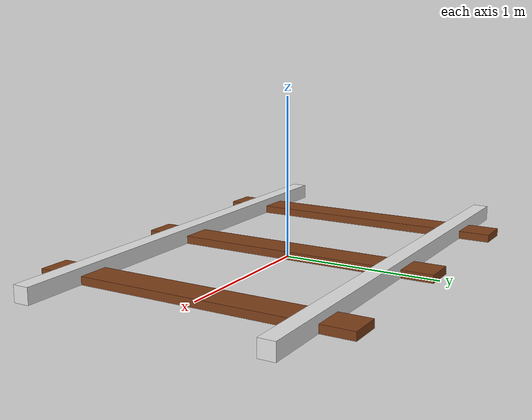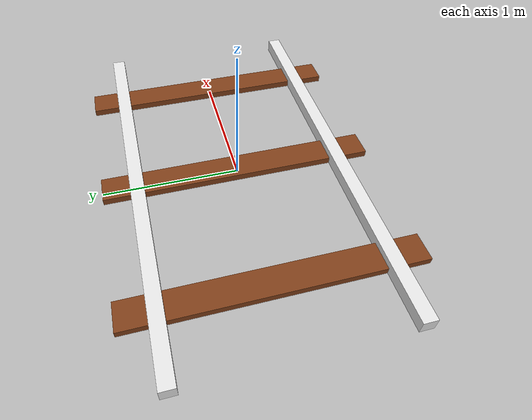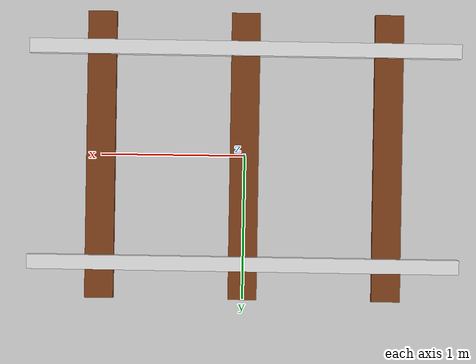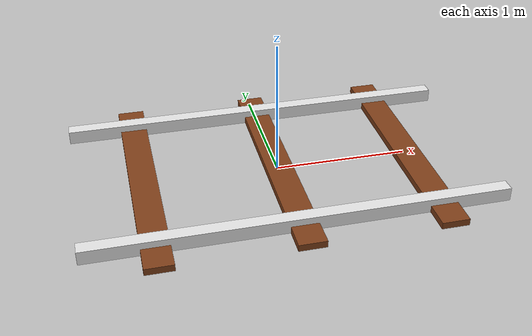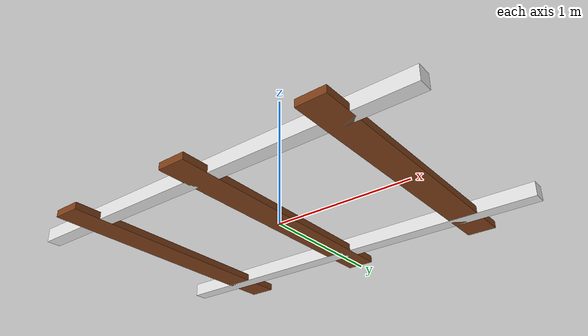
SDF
<?xml version="1.0" encoding="UTF-8"?>
<sdf version='1.10'>
 <model name="rail_line">
  <static>true</static>
  <pose>0 0 0.01 0 0 0</pose>
  <link name="rail_link">

    <!-- Raylar -->
    <visual name="rail_left">
      <pose>0 0.75 0.05 0 0 0</pose>
      <geometry>
        <box><size>3 0.1 0.1</size></box>
      </geometry>
      <material>
        <ambient>0.8 0.8 0.8 1</ambient>
        <diffuse>0.9 0.9 0.9 1</diffuse> <!-- Parlak çelik -->
      </material>
    </visual>

    <visual name="rail_right">
      <pose>0 -0.75 0.05 0 0 0</pose>
      <geometry>
        <box><size>3 0.1 0.1</size></box>
      </geometry>
      <material>
        <ambient>0.8 0.8 0.8 1</ambient>
        <diffuse>0.9 0.9 0.9 1</diffuse>
      </material>
    </visual>

    <!-- Traversler (ahşap görünümlü kutular) -->
    <!-- 20 travers, 2m aralıklarla -->
    <!-- Her biri 1.6m uzunluğunda (rayların altını kaplar), 0.2m genişlik, 0.05m yükseklik -->
    <!-- Python ile otomatik üretilebilir, ama 3 tane örnek veriyorum -->
    <!-- Traversler artık raylara dik (X yönünde kısa, Y yönünde uzun) -->
    <visual name="traverse_1">
      <pose>1 0 0.025 0 0 0</pose>
      <geometry><box><size>0.2 2 0.05</size></box></geometry>
      <material>
        <ambient>0.4 0.2 0.1 1</ambient>
        <diffuse>0.5 0.25 0.1 1</diffuse>
      </material>
    </visual>

    <visual name="traverse_2">
      <pose>0 0 0.025 0 0 0</pose>
      <geometry><box><size>0.2 2 0.05</size></box></geometry>
      <material>
        <ambient>0.4 0.2 0.1 1</ambient>
        <diffuse>0.5 0.25 0.1 1</diffuse>
      </material>
    </visual>

    <visual name="traverse_3">
      <pose>-1 0 0.025 0 0 0</pose>
      <geometry><box><size>0.2 2 0.05</size></box></geometry>
      <material>
        <ambient>0.4 0.2 0.1 1</ambient>
        <diffuse>0.5 0.25 0.1 1</diffuse>
      </material>
    </visual>

    <!-- ...devamı aynı şekilde çoğaltılabilir -->

  </link>
</model>
</sdf>
